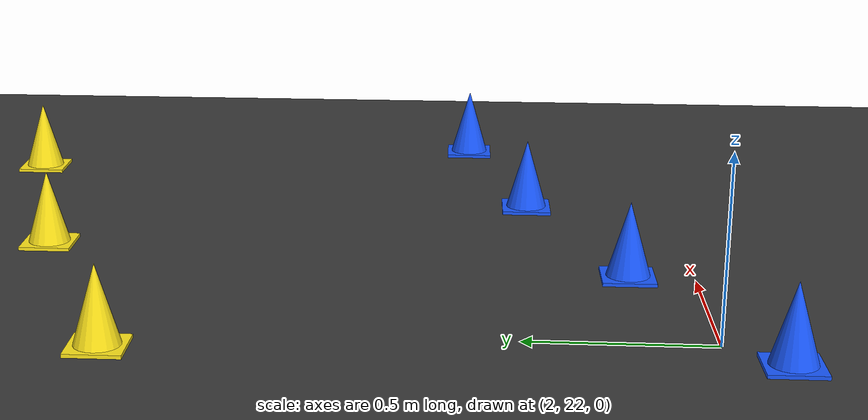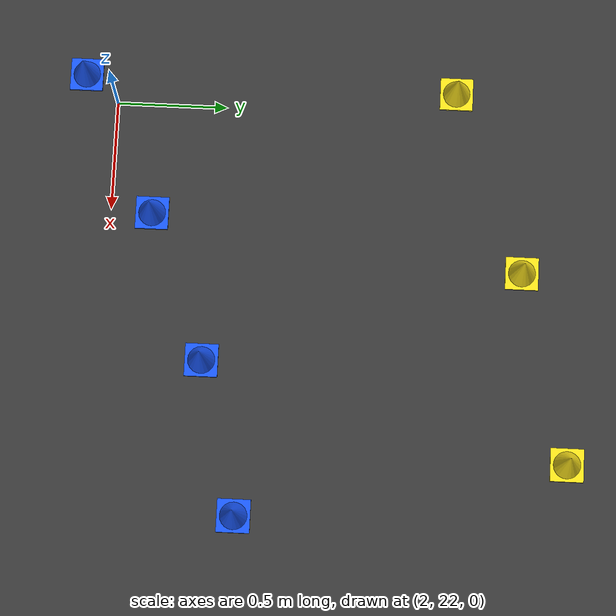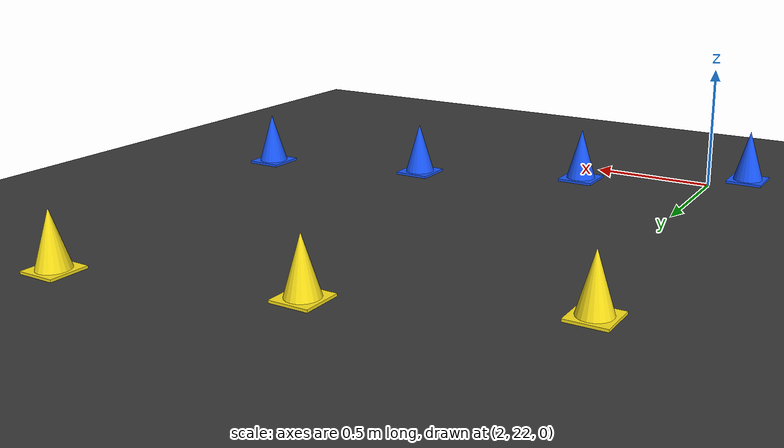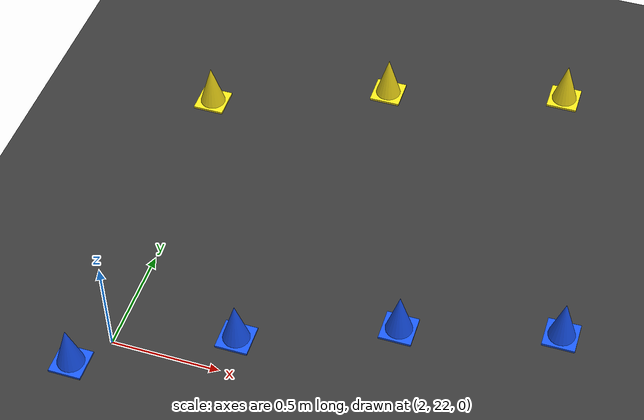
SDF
<sdf version="1.8">
 <world name="track_with_cones">
  <model name="ground_plane">
   <static>true</static>
   <link name="link">
    <collision name="collision">
     <geometry><plane><normal>0 0 1</normal><size>100 100</size></plane></geometry>
     <surface><friction><ode><mu>100</mu><mu2>100</mu2></ode></friction></surface>
    </collision>
    <visual name="visual">
     <geometry><plane><normal>0 0 1</normal><size>100 100</size></plane></geometry>
     <material>
      <ambient>0.22 0.22 0.22 1</ambient>
      <diffuse>0.22 0.22 0.22 1</diffuse>
      <specular>0.05 0.05 0.05 1</specular>
     </material>
    </visual>
   </link>
  </model>
  <model name="cone_blue_58">
   <static>true</static>
   <pose>3.8752 22.6297 0.11 0 0 0</pose>
   <link name="link">
    <visual name="base_visual">
     <pose>0 0 -0.105 0 0 0</pose>
     <geometry><box><size>0.15 0.15 0.01</size></box></geometry>
     <material>
      <ambient>0.05 0.25 0.95 1.0</ambient>
      <diffuse>0.10 0.35 1.00 1.0</diffuse>
      <specular>0.2 0.2 0.2 1.0</specular>
     </material>
    </visual>
    <visual name="cone_visual">
     <geometry><cone><radius>0.065</radius><length>0.22</length></cone></geometry>
     <material>
      <ambient>0.05 0.25 0.95 1.0</ambient>
      <diffuse>0.10 0.35 1.00 1.0</diffuse>
      <specular>0.2 0.2 0.2 1.0</specular>
     </material>
    </visual>
    <collision name="collision">
     <geometry><cylinder><radius>0.065</radius><length>0.22</length></cylinder></geometry>
    </collision>
   </link>
  </model>
  <model name="cone_yellow_58">
   <static>true</static>
   <pose>3.5808 24.1006 0.11 0 0 0</pose>
   <link name="link">
    <visual name="base_visual">
     <pose>0 0 -0.105 0 0 0</pose>
     <geometry><box><size>0.15 0.15 0.01</size></box></geometry>
     <material>
      <ambient>0.95 0.85 0.05 1.0</ambient>
      <diffuse>1.00 0.90 0.10 1.0</diffuse>
      <specular>0.2 0.2 0.2 1.0</specular>
     </material>
    </visual>
    <visual name="cone_visual">
     <geometry><cone><radius>0.065</radius><length>0.22</length></cone></geometry>
     <material>
      <ambient>0.95 0.85 0.05 1.0</ambient>
      <diffuse>1.00 0.90 0.10 1.0</diffuse>
      <specular>0.2 0.2 0.2 1.0</specular>
     </material>
    </visual>
    <collision name="collision">
     <geometry><cylinder><radius>0.065</radius><length>0.22</length></cylinder></geometry>
    </collision>
   </link>
  </model>
  <model name="cone_blue_59">
   <static>true</static>
   <pose>3.1812 22.4482 0.11 0 0 0</pose>
   <link name="link">
    <visual name="base_visual">
     <pose>0 0 -0.105 0 0 0</pose>
     <geometry><box><size>0.15 0.15 0.01</size></box></geometry>
     <material>
      <ambient>0.05 0.25 0.95 1.0</ambient>
      <diffuse>0.10 0.35 1.00 1.0</diffuse>
      <specular>0.2 0.2 0.2 1.0</specular>
     </material>
    </visual>
    <visual name="cone_visual">
     <geometry><cone><radius>0.065</radius><length>0.22</length></cone></geometry>
     <material>
      <ambient>0.05 0.25 0.95 1.0</ambient>
      <diffuse>0.10 0.35 1.00 1.0</diffuse>
      <specular>0.2 0.2 0.2 1.0</specular>
     </material>
    </visual>
    <collision name="collision">
     <geometry><cylinder><radius>0.065</radius><length>0.22</length></cylinder></geometry>
    </collision>
   </link>
  </model>
  <model name="cone_yellow_59">
   <static>true</static>
   <pose>2.7174 23.8746 0.11 0 0 0</pose>
   <link name="link">
    <visual name="base_visual">
     <pose>0 0 -0.105 0 0 0</pose>
     <geometry><box><size>0.15 0.15 0.01</size></box></geometry>
     <material>
      <ambient>0.95 0.85 0.05 1.0</ambient>
      <diffuse>1.00 0.90 0.10 1.0</diffuse>
      <specular>0.2 0.2 0.2 1.0</specular>
     </material>
    </visual>
    <visual name="cone_visual">
     <geometry><cone><radius>0.065</radius><length>0.22</length></cone></geometry>
     <material>
      <ambient>0.95 0.85 0.05 1.0</ambient>
      <diffuse>1.00 0.90 0.10 1.0</diffuse>
      <specular>0.2 0.2 0.2 1.0</specular>
     </material>
    </visual>
    <collision name="collision">
     <geometry><cylinder><radius>0.065</radius><length>0.22</length></cylinder></geometry>
    </collision>
   </link>
  </model>
  <model name="cone_blue_60">
   <static>true</static>
   <pose>2.5117 22.1862 0.11 0 0 0</pose>
   <link name="link">
    <visual name="base_visual">
     <pose>0 0 -0.105 0 0 0</pose>
     <geometry><box><size>0.15 0.15 0.01</size></box></geometry>
     <material>
      <ambient>0.05 0.25 0.95 1.0</ambient>
      <diffuse>0.10 0.35 1.00 1.0</diffuse>
      <specular>0.2 0.2 0.2 1.0</specular>
     </material>
    </visual>
    <visual name="cone_visual">
     <geometry><cone><radius>0.065</radius><length>0.22</length></cone></geometry>
     <material>
      <ambient>0.05 0.25 0.95 1.0</ambient>
      <diffuse>0.10 0.35 1.00 1.0</diffuse>
      <specular>0.2 0.2 0.2 1.0</specular>
     </material>
    </visual>
    <collision name="collision">
     <geometry><cylinder><radius>0.065</radius><length>0.22</length></cylinder></geometry>
    </collision>
   </link>
  </model>
  <model name="cone_yellow_60">
   <static>true</static>
   <pose>1.8877 23.5502 0.11 0 0 0</pose>
   <link name="link">
    <visual name="base_visual">
     <pose>0 0 -0.105 0 0 0</pose>
     <geometry><box><size>0.15 0.15 0.01</size></box></geometry>
     <material>
      <ambient>0.95 0.85 0.05 1.0</ambient>
      <diffuse>1.00 0.90 0.10 1.0</diffuse>
      <specular>0.2 0.2 0.2 1.0</specular>
     </material>
    </visual>
    <visual name="cone_visual">
     <geometry><cone><radius>0.065</radius><length>0.22</length></cone></geometry>
     <material>
      <ambient>0.95 0.85 0.05 1.0</ambient>
      <diffuse>1.00 0.90 0.10 1.0</diffuse>
      <specular>0.2 0.2 0.2 1.0</specular>
     </material>
    </visual>
    <collision name="collision">
     <geometry><cylinder><radius>0.065</radius><length>0.22</length></cylinder></geometry>
    </collision>
   </link>
  </model>
  <model name="cone_blue_61">
   <static>true</static>
   <pose>1.8706 21.8477 0.11 0 0 0</pose>
   <link name="link">
    <visual name="base_visual">
     <pose>0 0 -0.105 0 0 0</pose>
     <geometry><box><size>0.15 0.15 0.01</size></box></geometry>
     <material>
      <ambient>0.05 0.25 0.95 1.0</ambient>
      <diffuse>0.10 0.35 1.00 1.0</diffuse>
      <specular>0.2 0.2 0.2 1.0</specular>
     </material>
    </visual>
    <visual name="cone_visual">
     <geometry><cone><radius>0.065</radius><length>0.22</length></cone></geometry>
     <material>
      <ambient>0.05 0.25 0.95 1.0</ambient>
      <diffuse>0.10 0.35 1.00 1.0</diffuse>
      <specular>0.2 0.2 0.2 1.0</specular>
     </material>
    </visual>
    <collision name="collision">
     <geometry><cylinder><radius>0.065</radius><length>0.22</length></cylinder></geometry>
    </collision>
   </link>
  </model>
 </world>
</sdf>
